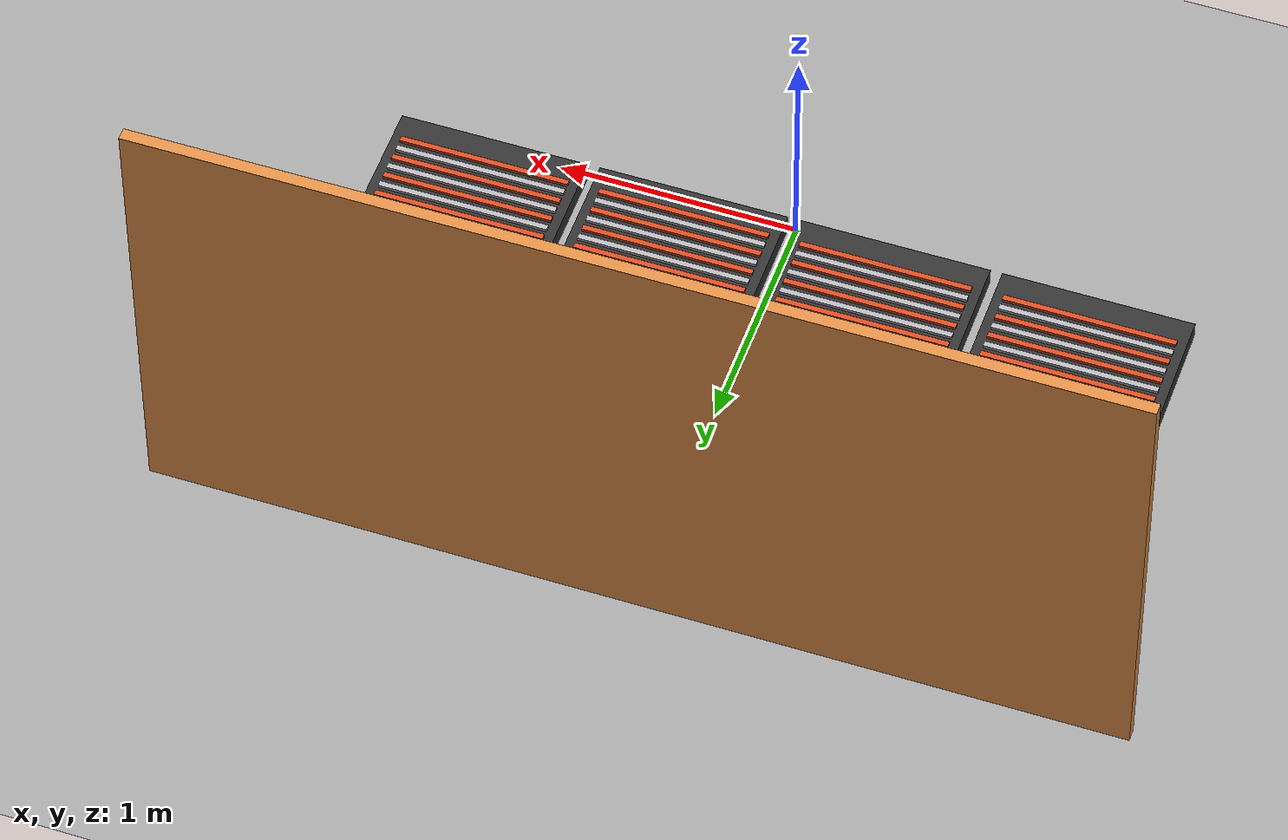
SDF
<sdf version="1.9">
 <world name="electrolysis_8_baths_world">
  <model name="ground_plane">
   <static>true</static>
   <link name="link">
    <collision name="collision">
     <geometry><plane><normal>0 0 1</normal><size>20 20</size></plane></geometry>
    </collision>
    <visual name="visual">
     <geometry><plane><normal>0 0 1</normal><size>20 20</size></plane></geometry>
     <material><ambient>0.65 0.65 0.65 1</ambient><diffuse>0.65 0.65 0.65 1</diffuse></material>
    </visual>
   </link>
  </model>
  <model name="bath_5">
   <static>true</static>
   <pose>-1.2750 0.4250 0.0600 0 0 0</pose>
   <link name="link">
    <collision name="collision"><geometry><box><size>0.8000 0.8000 0.0800</size></box></geometry></collision>
    <visual name="visual">
     <geometry><box><size>0.8000 0.8000 0.0800</size></box></geometry>
     <material><ambient>0.20 0.20 0.20 1</ambient><diffuse>0.20 0.20 0.20 1</diffuse></material>
    </visual>
   </link>
  </model>
  <model name="bath_5_anode_01">
   <static>true</static>
   <pose>-1.2750 0.1500 0.1000 0 0 0</pose>
   <link name="link">
    <collision name="collision"><geometry><box><size>0.7200 0.0250 0.0250</size></box></geometry></collision>
    <visual name="visual">
     <geometry><box><size>0.7200 0.0250 0.0250</size></box></geometry>
     <material><ambient>0.85 0.30 0.14 1</ambient><diffuse>0.85 0.30 0.14 1</diffuse></material>
    </visual>
   </link>
  </model>
  <model name="bath_5_cathode_02">
   <static>true</static>
   <pose>-1.2750 0.2000 0.1000 0 0 0</pose>
   <link name="link">
    <collision name="collision"><geometry><box><size>0.7200 0.0250 0.0250</size></box></geometry></collision>
    <visual name="visual">
     <geometry><box><size>0.7200 0.0250 0.0250</size></box></geometry>
     <material><ambient>0.72 0.72 0.74 1</ambient><diffuse>0.72 0.72 0.74 1</diffuse></material>
    </visual>
   </link>
  </model>
  <model name="bath_5_anode_03">
   <static>true</static>
   <pose>-1.2750 0.2500 0.1000 0 0 0</pose>
   <link name="link">
    <collision name="collision"><geometry><box><size>0.7200 0.0250 0.0250</size></box></geometry></collision>
    <visual name="visual">
     <geometry><box><size>0.7200 0.0250 0.0250</size></box></geometry>
     <material><ambient>0.85 0.30 0.14 1</ambient><diffuse>0.85 0.30 0.14 1</diffuse></material>
    </visual>
   </link>
  </model>
  <model name="bath_5_cathode_04">
   <static>true</static>
   <pose>-1.2750 0.3000 0.1000 0 0 0</pose>
   <link name="link">
    <collision name="collision"><geometry><box><size>0.7200 0.0250 0.0250</size></box></geometry></collision>
    <visual name="visual">
     <geometry><box><size>0.7200 0.0250 0.0250</size></box></geometry>
     <material><ambient>0.72 0.72 0.74 1</ambient><diffuse>0.72 0.72 0.74 1</diffuse></material>
    </visual>
   </link>
  </model>
  <model name="bath_5_anode_05">
   <static>true</static>
   <pose>-1.2750 0.3500 0.1000 0 0 0</pose>
   <link name="link">
    <collision name="collision"><geometry><box><size>0.7200 0.0250 0.0250</size></box></geometry></collision>
    <visual name="visual">
     <geometry><box><size>0.7200 0.0250 0.0250</size></box></geometry>
     <material><ambient>0.85 0.30 0.14 1</ambient><diffuse>0.85 0.30 0.14 1</diffuse></material>
    </visual>
   </link>
  </model>
  <model name="bath_5_cathode_06">
   <static>true</static>
   <pose>-1.2750 0.4000 0.1000 0 0 0</pose>
   <link name="link">
    <collision name="collision"><geometry><box><size>0.7200 0.0250 0.0250</size></box></geometry></collision>
    <visual name="visual">
     <geometry><box><size>0.7200 0.0250 0.0250</size></box></geometry>
     <material><ambient>0.72 0.72 0.74 1</ambient><diffuse>0.72 0.72 0.74 1</diffuse></material>
    </visual>
   </link>
  </model>
  <model name="bath_5_anode_07">
   <static>true</static>
   <pose>-1.2750 0.4500 0.1000 0 0 0</pose>
   <link name="link">
    <collision name="collision"><geometry><box><size>0.7200 0.0250 0.0250</size></box></geometry></collision>
    <visual name="visual">
     <geometry><box><size>0.7200 0.0250 0.0250</size></box></geometry>
     <material><ambient>0.85 0.30 0.14 1</ambient><diffuse>0.85 0.30 0.14 1</diffuse></material>
    </visual>
   </link>
  </model>
  <model name="bath_5_cathode_08">
   <static>true</static>
   <pose>-1.2750 0.5000 0.1000 0 0 0</pose>
   <link name="link">
    <collision name="collision"><geometry><box><size>0.7200 0.0250 0.0250</size></box></geometry></collision>
    <visual name="visual">
     <geometry><box><size>0.7200 0.0250 0.0250</size></box></geometry>
     <material><ambient>0.72 0.72 0.74 1</ambient><diffuse>0.72 0.72 0.74 1</diffuse></material>
    </visual>
   </link>
  </model>
  <model name="bath_5_anode_09">
   <static>true</static>
   <pose>-1.2750 0.5500 0.1000 0 0 0</pose>
   <link name="link">
    <collision name="collision"><geometry><box><size>0.7200 0.0250 0.0250</size></box></geometry></collision>
    <visual name="visual">
     <geometry><box><size>0.7200 0.0250 0.0250</size></box></geometry>
     <material><ambient>0.85 0.30 0.14 1</ambient><diffuse>0.85 0.30 0.14 1</diffuse></material>
    </visual>
   </link>
  </model>
  <model name="bath_5_cathode_10">
   <static>true</static>
   <pose>-1.2750 0.6000 0.1000 0 0 0</pose>
   <link name="link">
    <collision name="collision"><geometry><box><size>0.7200 0.0250 0.0250</size></box></geometry></collision>
    <visual name="visual">
     <geometry><box><size>0.7200 0.0250 0.0250</size></box></geometry>
     <material><ambient>0.72 0.72 0.74 1</ambient><diffuse>0.72 0.72 0.74 1</diffuse></material>
    </visual>
   </link>
  </model>
  <model name="bath_5_anode_11">
   <static>true</static>
   <pose>-1.2750 0.6500 0.1000 0 0 0</pose>
   <link name="link">
    <collision name="collision"><geometry><box><size>0.7200 0.0250 0.0250</size></box></geometry></collision>
    <visual name="visual">
     <geometry><box><size>0.7200 0.0250 0.0250</size></box></geometry>
     <material><ambient>0.85 0.30 0.14 1</ambient><diffuse>0.85 0.30 0.14 1</diffuse></material>
    </visual>
   </link>
  </model>
  <model name="bath_5_cathode_12">
   <static>true</static>
   <pose>-1.2750 0.7000 0.1000 0 0 0</pose>
   <link name="link">
    <collision name="collision"><geometry><box><size>0.7200 0.0250 0.0250</size></box></geometry></collision>
    <visual name="visual">
     <geometry><box><size>0.7200 0.0250 0.0250</size></box></geometry>
     <material><ambient>0.72 0.72 0.74 1</ambient><diffuse>0.72 0.72 0.74 1</diffuse></material>
    </visual>
   </link>
  </model>
  <model name="bath_6">
   <static>true</static>
   <pose>-0.4250 0.4250 0.0600 0 0 0</pose>
   <link name="link">
    <collision name="collision"><geometry><box><size>0.8000 0.8000 0.0800</size></box></geometry></collision>
    <visual name="visual">
     <geometry><box><size>0.8000 0.8000 0.0800</size></box></geometry>
     <material><ambient>0.20 0.20 0.20 1</ambient><diffuse>0.20 0.20 0.20 1</diffuse></material>
    </visual>
   </link>
  </model>
  <model name="bath_6_anode_01">
   <static>true</static>
   <pose>-0.4250 0.1500 0.1000 0 0 0</pose>
   <link name="link">
    <collision name="collision"><geometry><box><size>0.7200 0.0250 0.0250</size></box></geometry></collision>
    <visual name="visual">
     <geometry><box><size>0.7200 0.0250 0.0250</size></box></geometry>
     <material><ambient>0.85 0.30 0.14 1</ambient><diffuse>0.85 0.30 0.14 1</diffuse></material>
    </visual>
   </link>
  </model>
  <model name="bath_6_cathode_02">
   <static>true</static>
   <pose>-0.4250 0.2000 0.1000 0 0 0</pose>
   <link name="link">
    <collision name="collision"><geometry><box><size>0.7200 0.0250 0.0250</size></box></geometry></collision>
    <visual name="visual">
     <geometry><box><size>0.7200 0.0250 0.0250</size></box></geometry>
     <material><ambient>0.72 0.72 0.74 1</ambient><diffuse>0.72 0.72 0.74 1</diffuse></material>
    </visual>
   </link>
  </model>
  <model name="bath_6_anode_03">
   <static>true</static>
   <pose>-0.4250 0.2500 0.1000 0 0 0</pose>
   <link name="link">
    <collision name="collision"><geometry><box><size>0.7200 0.0250 0.0250</size></box></geometry></collision>
    <visual name="visual">
     <geometry><box><size>0.7200 0.0250 0.0250</size></box></geometry>
     <material><ambient>0.85 0.30 0.14 1</ambient><diffuse>0.85 0.30 0.14 1</diffuse></material>
    </visual>
   </link>
  </model>
  <model name="bath_6_cathode_04">
   <static>true</static>
   <pose>-0.4250 0.3000 0.1000 0 0 0</pose>
   <link name="link">
    <collision name="collision"><geometry><box><size>0.7200 0.0250 0.0250</size></box></geometry></collision>
    <visual name="visual">
     <geometry><box><size>0.7200 0.0250 0.0250</size></box></geometry>
     <material><ambient>0.72 0.72 0.74 1</ambient><diffuse>0.72 0.72 0.74 1</diffuse></material>
    </visual>
   </link>
  </model>
  <model name="bath_6_anode_05">
   <static>true</static>
   <pose>-0.4250 0.3500 0.1000 0 0 0</pose>
   <link name="link">
    <collision name="collision"><geometry><box><size>0.7200 0.0250 0.0250</size></box></geometry></collision>
    <visual name="visual">
     <geometry><box><size>0.7200 0.0250 0.0250</size></box></geometry>
     <material><ambient>0.85 0.30 0.14 1</ambient><diffuse>0.85 0.30 0.14 1</diffuse></material>
    </visual>
   </link>
  </model>
  <model name="bath_6_cathode_06">
   <static>true</static>
   <pose>-0.4250 0.4000 0.1000 0 0 0</pose>
   <link name="link">
    <collision name="collision"><geometry><box><size>0.7200 0.0250 0.0250</size></box></geometry></collision>
    <visual name="visual">
     <geometry><box><size>0.7200 0.0250 0.0250</size></box></geometry>
     <material><ambient>0.72 0.72 0.74 1</ambient><diffuse>0.72 0.72 0.74 1</diffuse></material>
    </visual>
   </link>
  </model>
  <model name="bath_6_anode_07">
   <static>true</static>
   <pose>-0.4250 0.4500 0.1000 0 0 0</pose>
   <link name="link">
    <collision name="collision"><geometry><box><size>0.7200 0.0250 0.0250</size></box></geometry></collision>
    <visual name="visual">
     <geometry><box><size>0.7200 0.0250 0.0250</size></box></geometry>
     <material><ambient>0.85 0.30 0.14 1</ambient><diffuse>0.85 0.30 0.14 1</diffuse></material>
    </visual>
   </link>
  </model>
  <model name="bath_6_cathode_08">
   <static>true</static>
   <pose>-0.4250 0.5000 0.1000 0 0 0</pose>
   <link name="link">
    <collision name="collision"><geometry><box><size>0.7200 0.0250 0.0250</size></box></geometry></collision>
    <visual name="visual">
     <geometry><box><size>0.7200 0.0250 0.0250</size></box></geometry>
     <material><ambient>0.72 0.72 0.74 1</ambient><diffuse>0.72 0.72 0.74 1</diffuse></material>
    </visual>
   </link>
  </model>
  <model name="bath_6_anode_09">
   <static>true</static>
   <pose>-0.4250 0.5500 0.1000 0 0 0</pose>
   <link name="link">
    <collision name="collision"><geometry><box><size>0.7200 0.0250 0.0250</size></box></geometry></collision>
    <visual name="visual">
     <geometry><box><size>0.7200 0.0250 0.0250</size></box></geometry>
     <material><ambient>0.85 0.30 0.14 1</ambient><diffuse>0.85 0.30 0.14 1</diffuse></material>
    </visual>
   </link>
  </model>
  <model name="bath_6_cathode_10">
   <static>true</static>
   <pose>-0.4250 0.6000 0.1000 0 0 0</pose>
   <link name="link">
    <collision name="collision"><geometry><box><size>0.7200 0.0250 0.0250</size></box></geometry></collision>
    <visual name="visual">
     <geometry><box><size>0.7200 0.0250 0.0250</size></box></geometry>
     <material><ambient>0.72 0.72 0.74 1</ambient><diffuse>0.72 0.72 0.74 1</diffuse></material>
    </visual>
   </link>
  </model>
  <model name="bath_6_anode_11">
   <static>true</static>
   <pose>-0.4250 0.6500 0.1000 0 0 0</pose>
   <link name="link">
    <collision name="collision"><geometry><box><size>0.7200 0.0250 0.0250</size></box></geometry></collision>
    <visual name="visual">
     <geometry><box><size>0.7200 0.0250 0.0250</size></box></geometry>
     <material><ambient>0.85 0.30 0.14 1</ambient><diffuse>0.85 0.30 0.14 1</diffuse></material>
    </visual>
   </link>
  </model>
  <model name="bath_6_cathode_12">
   <static>true</static>
   <pose>-0.4250 0.7000 0.1000 0 0 0</pose>
   <link name="link">
    <collision name="collision"><geometry><box><size>0.7200 0.0250 0.0250</size></box></geometry></collision>
    <visual name="visual">
     <geometry><box><size>0.7200 0.0250 0.0250</size></box></geometry>
     <material><ambient>0.72 0.72 0.74 1</ambient><diffuse>0.72 0.72 0.74 1</diffuse></material>
    </visual>
   </link>
  </model>
  <model name="bath_7">
   <static>true</static>
   <pose>0.4250 0.4250 0.0600 0 0 0</pose>
   <link name="link">
    <collision name="collision"><geometry><box><size>0.8000 0.8000 0.0800</size></box></geometry></collision>
    <visual name="visual">
     <geometry><box><size>0.8000 0.8000 0.0800</size></box></geometry>
     <material><ambient>0.20 0.20 0.20 1</ambient><diffuse>0.20 0.20 0.20 1</diffuse></material>
    </visual>
   </link>
  </model>
  <model name="bath_7_anode_01">
   <static>true</static>
   <pose>0.4250 0.1500 0.1000 0 0 0</pose>
   <link name="link">
    <collision name="collision"><geometry><box><size>0.7200 0.0250 0.0250</size></box></geometry></collision>
    <visual name="visual">
     <geometry><box><size>0.7200 0.0250 0.0250</size></box></geometry>
     <material><ambient>0.85 0.30 0.14 1</ambient><diffuse>0.85 0.30 0.14 1</diffuse></material>
    </visual>
   </link>
  </model>
  <model name="bath_7_cathode_02">
   <static>true</static>
   <pose>0.4250 0.2000 0.1000 0 0 0</pose>
   <link name="link">
    <collision name="collision"><geometry><box><size>0.7200 0.0250 0.0250</size></box></geometry></collision>
    <visual name="visual">
     <geometry><box><size>0.7200 0.0250 0.0250</size></box></geometry>
     <material><ambient>0.72 0.72 0.74 1</ambient><diffuse>0.72 0.72 0.74 1</diffuse></material>
    </visual>
   </link>
  </model>
  <model name="bath_7_anode_03">
   <static>true</static>
   <pose>0.4250 0.2500 0.1000 0 0 0</pose>
   <link name="link">
    <collision name="collision"><geometry><box><size>0.7200 0.0250 0.0250</size></box></geometry></collision>
    <visual name="visual">
     <geometry><box><size>0.7200 0.0250 0.0250</size></box></geometry>
     <material><ambient>0.85 0.30 0.14 1</ambient><diffuse>0.85 0.30 0.14 1</diffuse></material>
    </visual>
   </link>
  </model>
  <model name="bath_7_cathode_04">
   <static>true</static>
   <pose>0.4250 0.3000 0.1000 0 0 0</pose>
   <link name="link">
    <collision name="collision"><geometry><box><size>0.7200 0.0250 0.0250</size></box></geometry></collision>
    <visual name="visual">
     <geometry><box><size>0.7200 0.0250 0.0250</size></box></geometry>
     <material><ambient>0.72 0.72 0.74 1</ambient><diffuse>0.72 0.72 0.74 1</diffuse></material>
    </visual>
   </link>
  </model>
  <model name="bath_7_anode_05">
   <static>true</static>
   <pose>0.4250 0.3500 0.1000 0 0 0</pose>
   <link name="link">
    <collision name="collision"><geometry><box><size>0.7200 0.0250 0.0250</size></box></geometry></collision>
    <visual name="visual">
     <geometry><box><size>0.7200 0.0250 0.0250</size></box></geometry>
     <material><ambient>0.85 0.30 0.14 1</ambient><diffuse>0.85 0.30 0.14 1</diffuse></material>
    </visual>
   </link>
  </model>
  <model name="bath_7_cathode_06">
   <static>true</static>
   <pose>0.4250 0.4000 0.1000 0 0 0</pose>
   <link name="link">
    <collision name="collision"><geometry><box><size>0.7200 0.0250 0.0250</size></box></geometry></collision>
    <visual name="visual">
     <geometry><box><size>0.7200 0.0250 0.0250</size></box></geometry>
     <material><ambient>0.72 0.72 0.74 1</ambient><diffuse>0.72 0.72 0.74 1</diffuse></material>
    </visual>
   </link>
  </model>
  <model name="bath_7_anode_07">
   <static>true</static>
   <pose>0.4250 0.4500 0.1000 0 0 0</pose>
   <link name="link">
    <collision name="collision"><geometry><box><size>0.7200 0.0250 0.0250</size></box></geometry></collision>
    <visual name="visual">
     <geometry><box><size>0.7200 0.0250 0.0250</size></box></geometry>
     <material><ambient>0.85 0.30 0.14 1</ambient><diffuse>0.85 0.30 0.14 1</diffuse></material>
    </visual>
   </link>
  </model>
  <model name="bath_7_cathode_08">
   <static>true</static>
   <pose>0.4250 0.5000 0.1000 0 0 0</pose>
   <link name="link">
    <collision name="collision"><geometry><box><size>0.7200 0.0250 0.0250</size></box></geometry></collision>
    <visual name="visual">
     <geometry><box><size>0.7200 0.0250 0.0250</size></box></geometry>
     <material><ambient>0.72 0.72 0.74 1</ambient><diffuse>0.72 0.72 0.74 1</diffuse></material>
    </visual>
   </link>
  </model>
  <model name="bath_7_anode_09">
   <static>true</static>
   <pose>0.4250 0.5500 0.1000 0 0 0</pose>
   <link name="link">
    <collision name="collision"><geometry><box><size>0.7200 0.0250 0.0250</size></box></geometry></collision>
    <visual name="visual">
     <geometry><box><size>0.7200 0.0250 0.0250</size></box></geometry>
     <material><ambient>0.85 0.30 0.14 1</ambient><diffuse>0.85 0.30 0.14 1</diffuse></material>
    </visual>
   </link>
  </model>
  <model name="bath_7_cathode_10">
   <static>true</static>
   <pose>0.4250 0.6000 0.1000 0 0 0</pose>
   <link name="link">
    <collision name="collision"><geometry><box><size>0.7200 0.0250 0.0250</size></box></geometry></collision>
    <visual name="visual">
     <geometry><box><size>0.7200 0.0250 0.0250</size></box></geometry>
     <material><ambient>0.72 0.72 0.74 1</ambient><diffuse>0.72 0.72 0.74 1</diffuse></material>
    </visual>
   </link>
  </model>
  <model name="bath_7_anode_11">
   <static>true</static>
   <pose>0.4250 0.6500 0.1000 0 0 0</pose>
   <link name="link">
    <collision name="collision"><geometry><box><size>0.7200 0.0250 0.0250</size></box></geometry></collision>
    <visual name="visual">
     <geometry><box><size>0.7200 0.0250 0.0250</size></box></geometry>
     <material><ambient>0.85 0.30 0.14 1</ambient><diffuse>0.85 0.30 0.14 1</diffuse></material>
    </visual>
   </link>
  </model>
  <model name="bath_7_cathode_12">
   <static>true</static>
   <pose>0.4250 0.7000 0.1000 0 0 0</pose>
   <link name="link">
    <collision name="collision"><geometry><box><size>0.7200 0.0250 0.0250</size></box></geometry></collision>
    <visual name="visual">
     <geometry><box><size>0.7200 0.0250 0.0250</size></box></geometry>
     <material><ambient>0.72 0.72 0.74 1</ambient><diffuse>0.72 0.72 0.74 1</diffuse></material>
    </visual>
   </link>
  </model>
  <model name="bath_8">
   <static>true</static>
   <pose>1.2750 0.4250 0.0600 0 0 0</pose>
   <link name="link">
    <collision name="collision"><geometry><box><size>0.8000 0.8000 0.0800</size></box></geometry></collision>
    <visual name="visual">
     <geometry><box><size>0.8000 0.8000 0.0800</size></box></geometry>
     <material><ambient>0.20 0.20 0.20 1</ambient><diffuse>0.20 0.20 0.20 1</diffuse></material>
    </visual>
   </link>
  </model>
  <model name="bath_8_anode_01">
   <static>true</static>
   <pose>1.2750 0.1500 0.1000 0 0 0</pose>
   <link name="link">
    <collision name="collision"><geometry><box><size>0.7200 0.0250 0.0250</size></box></geometry></collision>
    <visual name="visual">
     <geometry><box><size>0.7200 0.0250 0.0250</size></box></geometry>
     <material><ambient>0.85 0.30 0.14 1</ambient><diffuse>0.85 0.30 0.14 1</diffuse></material>
    </visual>
   </link>
  </model>
  <model name="bath_8_cathode_02">
   <static>true</static>
   <pose>1.2750 0.2000 0.1000 0 0 0</pose>
   <link name="link">
    <collision name="collision"><geometry><box><size>0.7200 0.0250 0.0250</size></box></geometry></collision>
    <visual name="visual">
     <geometry><box><size>0.7200 0.0250 0.0250</size></box></geometry>
     <material><ambient>0.72 0.72 0.74 1</ambient><diffuse>0.72 0.72 0.74 1</diffuse></material>
    </visual>
   </link>
  </model>
  <model name="bath_8_anode_03">
   <static>true</static>
   <pose>1.2750 0.2500 0.1000 0 0 0</pose>
   <link name="link">
    <collision name="collision"><geometry><box><size>0.7200 0.0250 0.0250</size></box></geometry></collision>
    <visual name="visual">
     <geometry><box><size>0.7200 0.0250 0.0250</size></box></geometry>
     <material><ambient>0.85 0.30 0.14 1</ambient><diffuse>0.85 0.30 0.14 1</diffuse></material>
    </visual>
   </link>
  </model>
  <model name="bath_8_cathode_04">
   <static>true</static>
   <pose>1.2750 0.3000 0.1000 0 0 0</pose>
   <link name="link">
    <collision name="collision"><geometry><box><size>0.7200 0.0250 0.0250</size></box></geometry></collision>
    <visual name="visual">
     <geometry><box><size>0.7200 0.0250 0.0250</size></box></geometry>
     <material><ambient>0.72 0.72 0.74 1</ambient><diffuse>0.72 0.72 0.74 1</diffuse></material>
    </visual>
   </link>
  </model>
  <model name="bath_8_anode_05">
   <static>true</static>
   <pose>1.2750 0.3500 0.1000 0 0 0</pose>
   <link name="link">
    <collision name="collision"><geometry><box><size>0.7200 0.0250 0.0250</size></box></geometry></collision>
    <visual name="visual">
     <geometry><box><size>0.7200 0.0250 0.0250</size></box></geometry>
     <material><ambient>0.85 0.30 0.14 1</ambient><diffuse>0.85 0.30 0.14 1</diffuse></material>
    </visual>
   </link>
  </model>
  <model name="bath_8_cathode_06">
   <static>true</static>
   <pose>1.2750 0.4000 0.1000 0 0 0</pose>
   <link name="link">
    <collision name="collision"><geometry><box><size>0.7200 0.0250 0.0250</size></box></geometry></collision>
    <visual name="visual">
     <geometry><box><size>0.7200 0.0250 0.0250</size></box></geometry>
     <material><ambient>0.72 0.72 0.74 1</ambient><diffuse>0.72 0.72 0.74 1</diffuse></material>
    </visual>
   </link>
  </model>
  <model name="bath_8_anode_07">
   <static>true</static>
   <pose>1.2750 0.4500 0.1000 0 0 0</pose>
   <link name="link">
    <collision name="collision"><geometry><box><size>0.7200 0.0250 0.0250</size></box></geometry></collision>
    <visual name="visual">
     <geometry><box><size>0.7200 0.0250 0.0250</size></box></geometry>
     <material><ambient>0.85 0.30 0.14 1</ambient><diffuse>0.85 0.30 0.14 1</diffuse></material>
    </visual>
   </link>
  </model>
  <model name="bath_8_cathode_08">
   <static>true</static>
   <pose>1.2750 0.5000 0.1000 0 0 0</pose>
   <link name="link">
    <collision name="collision"><geometry><box><size>0.7200 0.0250 0.0250</size></box></geometry></collision>
    <visual name="visual">
     <geometry><box><size>0.7200 0.0250 0.0250</size></box></geometry>
     <material><ambient>0.72 0.72 0.74 1</ambient><diffuse>0.72 0.72 0.74 1</diffuse></material>
    </visual>
   </link>
  </model>
  <model name="bath_8_anode_09">
   <static>true</static>
   <pose>1.2750 0.5500 0.1000 0 0 0</pose>
   <link name="link">
    <collision name="collision"><geometry><box><size>0.7200 0.0250 0.0250</size></box></geometry></collision>
    <visual name="visual">
     <geometry><box><size>0.7200 0.0250 0.0250</size></box></geometry>
     <material><ambient>0.85 0.30 0.14 1</ambient><diffuse>0.85 0.30 0.14 1</diffuse></material>
    </visual>
   </link>
  </model>
  <model name="bath_8_cathode_10">
   <static>true</static>
   <pose>1.2750 0.6000 0.1000 0 0 0</pose>
   <link name="link">
    <collision name="collision"><geometry><box><size>0.7200 0.0250 0.0250</size></box></geometry></collision>
    <visual name="visual">
     <geometry><box><size>0.7200 0.0250 0.0250</size></box></geometry>
     <material><ambient>0.72 0.72 0.74 1</ambient><diffuse>0.72 0.72 0.74 1</diffuse></material>
    </visual>
   </link>
  </model>
  <model name="bath_8_anode_11">
   <static>true</static>
   <pose>1.2750 0.6500 0.1000 0 0 0</pose>
   <link name="link">
    <collision name="collision"><geometry><box><size>0.7200 0.0250 0.0250</size></box></geometry></collision>
    <visual name="visual">
     <geometry><box><size>0.7200 0.0250 0.0250</size></box></geometry>
     <material><ambient>0.85 0.30 0.14 1</ambient><diffuse>0.85 0.30 0.14 1</diffuse></material>
    </visual>
   </link>
  </model>
  <model name="bath_8_cathode_12">
   <static>true</static>
   <pose>1.2750 0.7000 0.1000 0 0 0</pose>
   <link name="link">
    <collision name="collision"><geometry><box><size>0.7200 0.0250 0.0250</size></box></geometry></collision>
    <visual name="visual">
     <geometry><box><size>0.7200 0.0250 0.0250</size></box></geometry>
     <material><ambient>0.72 0.72 0.74 1</ambient><diffuse>0.72 0.72 0.74 1</diffuse></material>
    </visual>
   </link>
  </model>
  <model name="north_wall">
   <static>true</static>
   <pose>0.0000 1.9750 1.0200 0 0 0</pose>
   <link name="link">
    <collision name="collision"><geometry><box><size>4.0000 0.0500 2.0000</size></box></geometry></collision>
    <visual name="visual">
     <geometry><box><size>4.0000 0.0500 2.0000</size></box></geometry>
     <material><ambient>0.88 0.56 0.28 1</ambient><diffuse>0.88 0.56 0.28 1</diffuse></material>
    </visual>
   </link>
  </model>
 </world>
</sdf>
